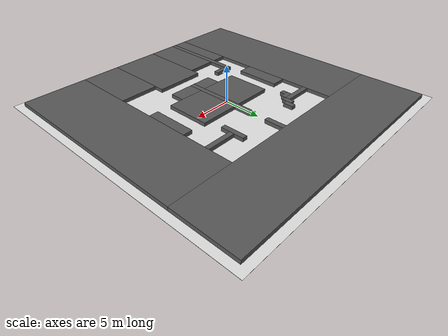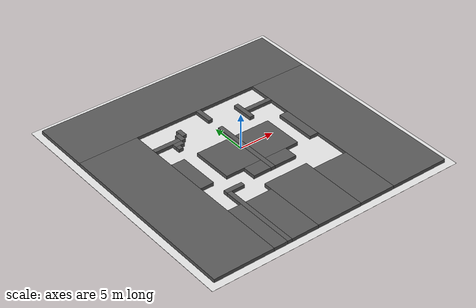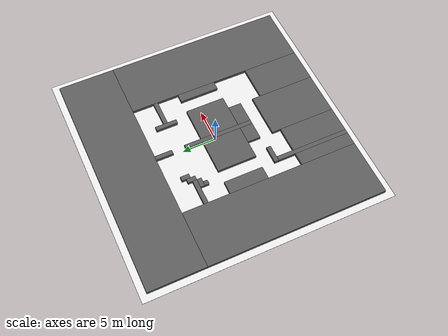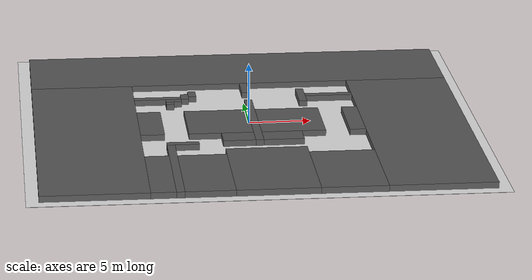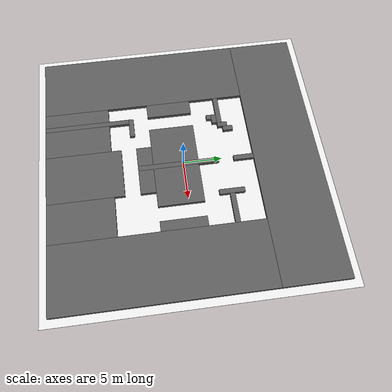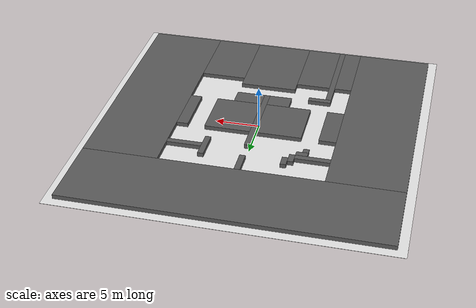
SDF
<?xml version="1.0"?>
<sdf version="1.9">
  <world name="train_map_l5">
    <plugin filename="ignition-gazebo-physics-system" name="ignition::gazebo::systems::Physics"/>
    <plugin filename="ignition-gazebo-user-commands-system" name="ignition::gazebo::systems::UserCommands"/>
    <plugin filename="ignition-gazebo-scene-broadcaster-system" name="ignition::gazebo::systems::SceneBroadcaster"/>
    <plugin filename="ignition-gazebo-sensors-system" name="ignition::gazebo::systems::Sensors">
      <render_engine>ogre2</render_engine>
    </plugin>
    <light name="sun" type="directional">
      <cast_shadows>true</cast_shadows>
      <pose>0 0 10 0 0 0</pose>
      <diffuse>0.8 0.8 0.8 1</diffuse>
      <specular>0.2 0.2 0.2 1</specular>
      <direction>-0.5 0.1 -0.9</direction>
    </light>
    <model name="ground_plane">
      <static>true</static>
      <link name="link">
        <collision name="collision">
          <geometry>
            <box><size>37.100000 37.100000 0.02</size></box>
          </geometry>
        </collision>
        <visual name="visual">
          <geometry>
            <box><size>37.100000 37.100000 0.02</size></box>
          </geometry>
          <material><ambient>0.9 0.9 0.9 1</ambient><diffuse>0.9 0.9 0.9 1</diffuse></material>
        </visual>
      </link>
    </model>
    <model name="rl_explore_obstacles">
      <static>true</static>
      <link name="wall_0000">
        <pose>0.000000 13.325000 0.250000 0 0 0</pose>
        <collision name="collision">
          <geometry>
            <box><size>35.100000 8.450000 0.500000</size></box>
          </geometry>
        </collision>
        <visual name="visual">
          <geometry>
            <box><size>35.100000 8.450000 0.500000</size></box>
          </geometry>
          <material><ambient>0.25 0.25 0.25 1</ambient><diffuse>0.35 0.35 0.35 1</diffuse></material>
        </visual>
      </link>
      <link name="wall_0001">
        <pose>-13.325000 -4.225000 0.250000 0 0 0</pose>
        <collision name="collision">
          <geometry>
            <box><size>8.450000 26.650000 0.500000</size></box>
          </geometry>
        </collision>
        <visual name="visual">
          <geometry>
            <box><size>8.450000 26.650000 0.500000</size></box>
          </geometry>
          <material><ambient>0.25 0.25 0.25 1</ambient><diffuse>0.35 0.35 0.35 1</diffuse></material>
        </visual>
      </link>
      <link name="wall_0002">
        <pose>0.325000 7.800000 0.250000 0 0 0</pose>
        <collision name="collision">
          <geometry>
            <box><size>0.650000 2.600000 0.500000</size></box>
          </geometry>
        </collision>
        <visual name="visual">
          <geometry>
            <box><size>0.650000 2.600000 0.500000</size></box>
          </geometry>
          <material><ambient>0.25 0.25 0.25 1</ambient><diffuse>0.35 0.35 0.35 1</diffuse></material>
        </visual>
      </link>
      <link name="wall_0003">
        <pose>13.325000 -4.225000 0.250000 0 0 0</pose>
        <collision name="collision">
          <geometry>
            <box><size>8.450000 26.650000 0.500000</size></box>
          </geometry>
        </collision>
        <visual name="visual">
          <geometry>
            <box><size>8.450000 26.650000 0.500000</size></box>
          </geometry>
          <material><ambient>0.25 0.25 0.25 1</ambient><diffuse>0.35 0.35 0.35 1</diffuse></material>
        </visual>
      </link>
      <link name="wall_0004">
        <pose>-4.225000 6.500000 0.250000 0 0 0</pose>
        <collision name="collision">
          <geometry>
            <box><size>0.650000 1.300000 0.500000</size></box>
          </geometry>
        </collision>
        <visual name="visual">
          <geometry>
            <box><size>0.650000 1.300000 0.500000</size></box>
          </geometry>
          <material><ambient>0.25 0.25 0.25 1</ambient><diffuse>0.35 0.35 0.35 1</diffuse></material>
        </visual>
      </link>
      <link name="wall_0005">
        <pose>4.875000 5.525000 0.250000 0 0 0</pose>
        <collision name="collision">
          <geometry>
            <box><size>0.650000 3.250000 0.500000</size></box>
          </geometry>
        </collision>
        <visual name="visual">
          <geometry>
            <box><size>0.650000 3.250000 0.500000</size></box>
          </geometry>
          <material><ambient>0.25 0.25 0.25 1</ambient><diffuse>0.35 0.35 0.35 1</diffuse></material>
        </visual>
      </link>
      <link name="wall_0006">
        <pose>-4.875000 5.850000 0.250000 0 0 0</pose>
        <collision name="collision">
          <geometry>
            <box><size>0.650000 1.300000 0.500000</size></box>
          </geometry>
        </collision>
        <visual name="visual">
          <geometry>
            <box><size>0.650000 1.300000 0.500000</size></box>
          </geometry>
          <material><ambient>0.25 0.25 0.25 1</ambient><diffuse>0.35 0.35 0.35 1</diffuse></material>
        </visual>
      </link>
      <link name="wall_0007">
        <pose>-7.150000 5.525000 0.250000 0 0 0</pose>
        <collision name="collision">
          <geometry>
            <box><size>3.900000 0.650000 0.500000</size></box>
          </geometry>
        </collision>
        <visual name="visual">
          <geometry>
            <box><size>3.900000 0.650000 0.500000</size></box>
          </geometry>
          <material><ambient>0.25 0.25 0.25 1</ambient><diffuse>0.35 0.35 0.35 1</diffuse></material>
        </visual>
      </link>
      <link name="wall_0008">
        <pose>7.150000 5.525000 0.250000 0 0 0</pose>
        <collision name="collision">
          <geometry>
            <box><size>3.900000 0.650000 0.500000</size></box>
          </geometry>
        </collision>
        <visual name="visual">
          <geometry>
            <box><size>3.900000 0.650000 0.500000</size></box>
          </geometry>
          <material><ambient>0.25 0.25 0.25 1</ambient><diffuse>0.35 0.35 0.35 1</diffuse></material>
        </visual>
      </link>
      <link name="wall_0009">
        <pose>-5.850000 4.875000 0.250000 0 0 0</pose>
        <collision name="collision">
          <geometry>
            <box><size>1.300000 0.650000 0.500000</size></box>
          </geometry>
        </collision>
        <visual name="visual">
          <geometry>
            <box><size>1.300000 0.650000 0.500000</size></box>
          </geometry>
          <material><ambient>0.25 0.25 0.25 1</ambient><diffuse>0.35 0.35 0.35 1</diffuse></material>
        </visual>
      </link>
      <link name="wall_0010">
        <pose>-6.175000 4.225000 0.250000 0 0 0</pose>
        <collision name="collision">
          <geometry>
            <box><size>0.650000 0.650000 0.500000</size></box>
          </geometry>
        </collision>
        <visual name="visual">
          <geometry>
            <box><size>0.650000 0.650000 0.500000</size></box>
          </geometry>
          <material><ambient>0.25 0.25 0.25 1</ambient><diffuse>0.35 0.35 0.35 1</diffuse></material>
        </visual>
      </link>
      <link name="wall_0011">
        <pose>0.325000 -0.650000 0.250000 0 0 0</pose>
        <collision name="collision">
          <geometry>
            <box><size>0.650000 10.400000 0.500000</size></box>
          </geometry>
        </collision>
        <visual name="visual">
          <geometry>
            <box><size>0.650000 10.400000 0.500000</size></box>
          </geometry>
          <material><ambient>0.25 0.25 0.25 1</ambient><diffuse>0.35 0.35 0.35 1</diffuse></material>
        </visual>
      </link>
      <link name="wall_0012">
        <pose>-8.125000 -0.975000 0.250000 0 0 0</pose>
        <collision name="collision">
          <geometry>
            <box><size>1.950000 5.850000 0.500000</size></box>
          </geometry>
        </collision>
        <visual name="visual">
          <geometry>
            <box><size>1.950000 5.850000 0.500000</size></box>
          </geometry>
          <material><ambient>0.25 0.25 0.25 1</ambient><diffuse>0.35 0.35 0.35 1</diffuse></material>
        </visual>
      </link>
      <link name="wall_0013">
        <pose>-2.600000 -0.975000 0.250000 0 0 0</pose>
        <collision name="collision">
          <geometry>
            <box><size>5.200000 5.850000 0.500000</size></box>
          </geometry>
        </collision>
        <visual name="visual">
          <geometry>
            <box><size>5.200000 5.850000 0.500000</size></box>
          </geometry>
          <material><ambient>0.25 0.25 0.25 1</ambient><diffuse>0.35 0.35 0.35 1</diffuse></material>
        </visual>
      </link>
      <link name="wall_0014">
        <pose>3.250000 -0.975000 0.250000 0 0 0</pose>
        <collision name="collision">
          <geometry>
            <box><size>5.200000 5.850000 0.500000</size></box>
          </geometry>
        </collision>
        <visual name="visual">
          <geometry>
            <box><size>5.200000 5.850000 0.500000</size></box>
          </geometry>
          <material><ambient>0.25 0.25 0.25 1</ambient><diffuse>0.35 0.35 0.35 1</diffuse></material>
        </visual>
      </link>
      <link name="wall_0015">
        <pose>8.450000 -0.975000 0.250000 0 0 0</pose>
        <collision name="collision">
          <geometry>
            <box><size>1.300000 5.850000 0.500000</size></box>
          </geometry>
        </collision>
        <visual name="visual">
          <geometry>
            <box><size>1.300000 5.850000 0.500000</size></box>
          </geometry>
          <material><ambient>0.25 0.25 0.25 1</ambient><diffuse>0.35 0.35 0.35 1</diffuse></material>
        </visual>
      </link>
      <link name="wall_0016">
        <pose>-1.300000 -4.875000 0.250000 0 0 0</pose>
        <collision name="collision">
          <geometry>
            <box><size>2.600000 1.950000 0.500000</size></box>
          </geometry>
        </collision>
        <visual name="visual">
          <geometry>
            <box><size>2.600000 1.950000 0.500000</size></box>
          </geometry>
          <material><ambient>0.25 0.25 0.25 1</ambient><diffuse>0.35 0.35 0.35 1</diffuse></material>
        </visual>
      </link>
      <link name="wall_0017">
        <pose>2.275000 -4.875000 0.250000 0 0 0</pose>
        <collision name="collision">
          <geometry>
            <box><size>3.250000 1.950000 0.500000</size></box>
          </geometry>
        </collision>
        <visual name="visual">
          <geometry>
            <box><size>3.250000 1.950000 0.500000</size></box>
          </geometry>
          <material><ambient>0.25 0.25 0.25 1</ambient><diffuse>0.35 0.35 0.35 1</diffuse></material>
        </visual>
      </link>
      <link name="wall_0018">
        <pose>-5.850000 -6.175000 0.250000 0 0 0</pose>
        <collision name="collision">
          <geometry>
            <box><size>2.600000 0.650000 0.500000</size></box>
          </geometry>
        </collision>
        <visual name="visual">
          <geometry>
            <box><size>2.600000 0.650000 0.500000</size></box>
          </geometry>
          <material><ambient>0.25 0.25 0.25 1</ambient><diffuse>0.35 0.35 0.35 1</diffuse></material>
        </visual>
      </link>
      <link name="wall_0019">
        <pose>-6.825000 -12.025000 0.250000 0 0 0</pose>
        <collision name="collision">
          <geometry>
            <box><size>0.650000 11.050000 0.500000</size></box>
          </geometry>
        </collision>
        <visual name="visual">
          <geometry>
            <box><size>0.650000 11.050000 0.500000</size></box>
          </geometry>
          <material><ambient>0.25 0.25 0.25 1</ambient><diffuse>0.35 0.35 0.35 1</diffuse></material>
        </visual>
      </link>
      <link name="wall_0020">
        <pose>0.650000 -12.675000 0.250000 0 0 0</pose>
        <collision name="collision">
          <geometry>
            <box><size>6.500000 9.750000 0.500000</size></box>
          </geometry>
        </collision>
        <visual name="visual">
          <geometry>
            <box><size>6.500000 9.750000 0.500000</size></box>
          </geometry>
          <material><ambient>0.25 0.25 0.25 1</ambient><diffuse>0.35 0.35 0.35 1</diffuse></material>
        </visual>
      </link>
      <link name="wall_0021">
        <pose>-8.125000 -13.325000 0.250000 0 0 0</pose>
        <collision name="collision">
          <geometry>
            <box><size>1.950000 8.450000 0.500000</size></box>
          </geometry>
        </collision>
        <visual name="visual">
          <geometry>
            <box><size>1.950000 8.450000 0.500000</size></box>
          </geometry>
          <material><ambient>0.25 0.25 0.25 1</ambient><diffuse>0.35 0.35 0.35 1</diffuse></material>
        </visual>
      </link>
      <link name="wall_0022">
        <pose>-4.550000 -13.325000 0.250000 0 0 0</pose>
        <collision name="collision">
          <geometry>
            <box><size>3.900000 8.450000 0.500000</size></box>
          </geometry>
        </collision>
        <visual name="visual">
          <geometry>
            <box><size>3.900000 8.450000 0.500000</size></box>
          </geometry>
          <material><ambient>0.25 0.25 0.25 1</ambient><diffuse>0.35 0.35 0.35 1</diffuse></material>
        </visual>
      </link>
      <link name="wall_0023">
        <pose>6.500000 -13.325000 0.250000 0 0 0</pose>
        <collision name="collision">
          <geometry>
            <box><size>5.200000 8.450000 0.500000</size></box>
          </geometry>
        </collision>
        <visual name="visual">
          <geometry>
            <box><size>5.200000 8.450000 0.500000</size></box>
          </geometry>
          <material><ambient>0.25 0.25 0.25 1</ambient><diffuse>0.35 0.35 0.35 1</diffuse></material>
        </visual>
      </link>
    </model>
  </world>
</sdf>
